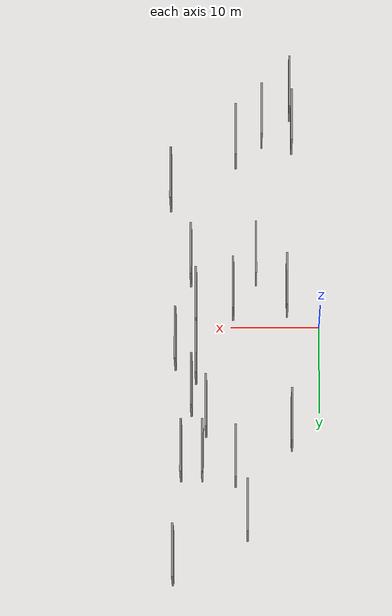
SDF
<sdf version="1.6">
 <world name="default">
  <scene>
   <sky><clouds><speed>12</speed></clouds></sky>
   <ambient>0.4 0.4 0.4 1</ambient>
   <background>0.7 0.7 0.7 1</background>
   <shadows>1</shadows>
  </scene>
  <gravity>0 0 -9.8066</gravity>
  <magnetic_field>6e-06 2.3e-05 -4.2e-05</magnetic_field>
  <physics default="0" name="default_physics" type="ode">
   <ode>
    <solver>
     <type>quick</type>
     <iters>10</iters>
     <sor>1.0</sor>
     <use_dynamic_moi_rescaling>0</use_dynamic_moi_rescaling>
    </solver>
    <constraints>
     <cfm>0</cfm>
     <erp>0.2</erp>
     <contact_max_correcting_vel>100</contact_max_correcting_vel>
     <contact_surface_layer>0.001</contact_surface_layer>
    </constraints>
   </ode>
   <max_step_size>0.004</max_step_size>
   <real_time_factor>1</real_time_factor>
   <real_time_update_rate>250</real_time_update_rate>
  </physics>
  <light name="sun" type="directional">
   <pose>0 0 10 0 0 0</pose>
   <diffuse>0.8 0.8 0.8 1</diffuse>
   <specular>0.2 0.2 0.2 1</specular>
   <attenuation>
    <range>1000</range>
    <constant>0.9</constant>
    <linear>0.01</linear>
    <quadratic>0.001</quadratic>
   </attenuation>
   <direction>-0.5 0.1 -0.9</direction>
  </light>
  <model name="grey_wall_1">
   <static>1</static>
   <pose>3.6434 -4.2358 0.0 0.000000 0.000000 1.570796</pose>
   <link name="link">
    <pose>0 0 3.00 0 0 0</pose>
    <collision name="collision"><geometry><box><size>6.00 0.2 6.00</size></box></geometry></collision>
    <visual name="visual">
     <cast_shadows>0</cast_shadows>
     <geometry><box><size>6.00 0.2 6.00</size></box></geometry>
     <material>
      <script>
       <uri>model://grey_wall/materials/scripts</uri>
       <uri>model://grey_wall/materials/textures</uri>
       <name>vrc/grey_wall</name>
      </script>
     </material>
    </visual>
   </link>
  </model>
  <model name="grey_wall_2">
   <static>1</static>
   <pose>3.1262 11.4131 0.0 0.000000 0.000000 1.570796</pose>
   <link name="link">
    <pose>0 0 3.00 0 0 0</pose>
    <collision name="collision"><geometry><box><size>6.00 0.2 6.00</size></box></geometry></collision>
    <visual name="visual">
     <cast_shadows>0</cast_shadows>
     <geometry><box><size>6.00 0.2 6.00</size></box></geometry>
     <material>
      <script>
       <uri>model://grey_wall/materials/scripts</uri>
       <uri>model://grey_wall/materials/textures</uri>
       <name>vrc/grey_wall</name>
      </script>
     </material>
    </visual>
   </link>
  </model>
  <model name="grey_wall_3">
   <static>1</static>
   <pose>13.9325 3.6311 0.0 0.000000 0.000000 1.570796</pose>
   <link name="link">
    <pose>0 0 3.00 0 0 0</pose>
    <collision name="collision"><geometry><box><size>6.00 0.2 6.00</size></box></geometry></collision>
    <visual name="visual">
     <cast_shadows>0</cast_shadows>
     <geometry><box><size>6.00 0.2 6.00</size></box></geometry>
     <material>
      <script>
       <uri>model://grey_wall/materials/scripts</uri>
       <uri>model://grey_wall/materials/textures</uri>
       <name>vrc/grey_wall</name>
      </script>
     </material>
    </visual>
   </link>
  </model>
  <model name="grey_wall_4">
   <static>1</static>
   <pose>3.3261 -27.5764 0.0 0.000000 0.000000 1.570796</pose>
   <link name="link">
    <pose>0 0 3.00 0 0 0</pose>
    <collision name="collision"><geometry><box><size>6.00 0.2 6.00</size></box></geometry></collision>
    <visual name="visual">
     <cast_shadows>0</cast_shadows>
     <geometry><box><size>6.00 0.2 6.00</size></box></geometry>
     <material>
      <script>
       <uri>model://grey_wall/materials/scripts</uri>
       <uri>model://grey_wall/materials/textures</uri>
       <name>vrc/grey_wall</name>
      </script>
     </material>
    </visual>
   </link>
  </model>
  <model name="grey_wall_5">
   <static>1</static>
   <pose>16.8456 -16.7078 0.0 0.000000 0.000000 1.570796</pose>
   <link name="link">
    <pose>0 0 3.00 0 0 0</pose>
    <collision name="collision"><geometry><box><size>6.00 0.2 6.00</size></box></geometry></collision>
    <visual name="visual">
     <cast_shadows>0</cast_shadows>
     <geometry><box><size>6.00 0.2 6.00</size></box></geometry>
     <material>
      <script>
       <uri>model://grey_wall/materials/scripts</uri>
       <uri>model://grey_wall/materials/textures</uri>
       <name>vrc/grey_wall</name>
      </script>
     </material>
    </visual>
   </link>
  </model>
  <model name="grey_wall_6">
   <static>1</static>
   <pose>14.5267 -7.7868 0.0 0.000000 0.000000 1.570796</pose>
   <link name="link">
    <pose>0 0 3.00 0 0 0</pose>
    <collision name="collision"><geometry><box><size>6.00 0.2 6.00</size></box></geometry></collision>
    <visual name="visual">
     <cast_shadows>0</cast_shadows>
     <geometry><box><size>6.00 0.2 6.00</size></box></geometry>
     <material>
      <script>
       <uri>model://grey_wall/materials/scripts</uri>
       <uri>model://grey_wall/materials/textures</uri>
       <name>vrc/grey_wall</name>
      </script>
     </material>
    </visual>
   </link>
  </model>
  <model name="grey_wall_7">
   <static>1</static>
   <pose>9.4575 -21.8375 0.0 0.000000 0.000000 1.570796</pose>
   <link name="link">
    <pose>0 0 3.00 0 0 0</pose>
    <collision name="collision"><geometry><box><size>6.00 0.2 6.00</size></box></geometry></collision>
    <visual name="visual">
     <cast_shadows>0</cast_shadows>
     <geometry><box><size>6.00 0.2 6.00</size></box></geometry>
     <material>
      <script>
       <uri>model://grey_wall/materials/scripts</uri>
       <uri>model://grey_wall/materials/textures</uri>
       <name>vrc/grey_wall</name>
      </script>
     </material>
    </visual>
   </link>
  </model>
  <model name="grey_wall_8">
   <static>1</static>
   <pose>13.9377 -2.6072 0.0 0.000000 0.000000 1.570796</pose>
   <link name="link">
    <pose>0 0 3.00 0 0 0</pose>
    <collision name="collision"><geometry><box><size>6.00 0.2 6.00</size></box></geometry></collision>
    <visual name="visual">
     <cast_shadows>0</cast_shadows>
     <geometry><box><size>6.00 0.2 6.00</size></box></geometry>
     <material>
      <script>
       <uri>model://grey_wall/materials/scripts</uri>
       <uri>model://grey_wall/materials/textures</uri>
       <name>vrc/grey_wall</name>
      </script>
     </material>
    </visual>
   </link>
  </model>
  <model name="grey_wall_9">
   <static>1</static>
   <pose>7.1594 -7.9296 0.0 0.000000 0.000000 1.570796</pose>
   <link name="link">
    <pose>0 0 3.00 0 0 0</pose>
    <collision name="collision"><geometry><box><size>6.00 0.2 6.00</size></box></geometry></collision>
    <visual name="visual">
     <cast_shadows>0</cast_shadows>
     <geometry><box><size>6.00 0.2 6.00</size></box></geometry>
     <material>
      <script>
       <uri>model://grey_wall/materials/scripts</uri>
       <uri>model://grey_wall/materials/textures</uri>
       <name>vrc/grey_wall</name>
      </script>
     </material>
    </visual>
   </link>
  </model>
  <model name="grey_wall_10">
   <static>1</static>
   <pose>9.7541 -3.8514 0.0 0.000000 0.000000 1.570796</pose>
   <link name="link">
    <pose>0 0 3.00 0 0 0</pose>
    <collision name="collision"><geometry><box><size>6.00 0.2 6.00</size></box></geometry></collision>
    <visual name="visual">
     <cast_shadows>0</cast_shadows>
     <geometry><box><size>6.00 0.2 6.00</size></box></geometry>
     <material>
      <script>
       <uri>model://grey_wall/materials/scripts</uri>
       <uri>model://grey_wall/materials/textures</uri>
       <name>vrc/grey_wall</name>
      </script>
     </material>
    </visual>
   </link>
  </model>
  <model name="grey_wall_11">
   <static>1</static>
   <pose>12.7835 9.8037 0.0 0.000000 0.000000 1.570796</pose>
   <link name="link">
    <pose>0 0 3.00 0 0 0</pose>
    <collision name="collision"><geometry><box><size>6.00 0.2 6.00</size></box></geometry></collision>
    <visual name="visual">
     <cast_shadows>0</cast_shadows>
     <geometry><box><size>6.00 0.2 6.00</size></box></geometry>
     <material>
      <script>
       <uri>model://grey_wall/materials/scripts</uri>
       <uri>model://grey_wall/materials/textures</uri>
       <name>vrc/grey_wall</name>
      </script>
     </material>
    </visual>
   </link>
  </model>
  <model name="grey_wall_12">
   <static>1</static>
   <pose>3.0962 -23.5766 0.0 0.000000 0.000000 1.570796</pose>
   <link name="link">
    <pose>0 0 3.00 0 0 0</pose>
    <collision name="collision"><geometry><box><size>6.00 0.2 6.00</size></box></geometry></collision>
    <visual name="visual">
     <cast_shadows>0</cast_shadows>
     <geometry><box><size>6.00 0.2 6.00</size></box></geometry>
     <material>
      <script>
       <uri>model://grey_wall/materials/scripts</uri>
       <uri>model://grey_wall/materials/textures</uri>
       <name>vrc/grey_wall</name>
      </script>
     </material>
    </visual>
   </link>
  </model>
  <model name="grey_wall_13">
   <static>1</static>
   <pose>9.4488 15.5420 0.0 0.000000 0.000000 1.570796</pose>
   <link name="link">
    <pose>0 0 3.00 0 0 0</pose>
    <collision name="collision"><geometry><box><size>6.00 0.2 6.00</size></box></geometry></collision>
    <visual name="visual">
     <cast_shadows>0</cast_shadows>
     <geometry><box><size>6.00 0.2 6.00</size></box></geometry>
     <material>
      <script>
       <uri>model://grey_wall/materials/scripts</uri>
       <uri>model://grey_wall/materials/textures</uri>
       <name>vrc/grey_wall</name>
      </script>
     </material>
    </visual>
   </link>
  </model>
  <model name="grey_wall_14">
   <static>1</static>
   <pose>14.4347 7.3577 0.0 0.000000 0.000000 1.570796</pose>
   <link name="link">
    <pose>0 0 3.00 0 0 0</pose>
    <collision name="collision"><geometry><box><size>6.00 0.2 6.00</size></box></geometry></collision>
    <visual name="visual">
     <cast_shadows>0</cast_shadows>
     <geometry><box><size>6.00 0.2 6.00</size></box></geometry>
     <material>
      <script>
       <uri>model://grey_wall/materials/scripts</uri>
       <uri>model://grey_wall/materials/textures</uri>
       <name>vrc/grey_wall</name>
      </script>
     </material>
    </visual>
   </link>
  </model>
  <model name="grey_wall_15">
   <static>1</static>
   <pose>8.1083 21.6999 0.0 0.000000 0.000000 1.570796</pose>
   <link name="link">
    <pose>0 0 3.00 0 0 0</pose>
    <collision name="collision"><geometry><box><size>6.00 0.2 6.00</size></box></geometry></collision>
    <visual name="visual">
     <cast_shadows>0</cast_shadows>
     <geometry><box><size>6.00 0.2 6.00</size></box></geometry>
     <material>
      <script>
       <uri>model://grey_wall/materials/scripts</uri>
       <uri>model://grey_wall/materials/textures</uri>
       <name>vrc/grey_wall</name>
      </script>
     </material>
    </visual>
   </link>
  </model>
  <model name="grey_wall_16">
   <static>1</static>
   <pose>6.5130 -24.2973 0.0 0.000000 0.000000 1.570796</pose>
   <link name="link">
    <pose>0 0 3.00 0 0 0</pose>
    <collision name="collision"><geometry><box><size>6.00 0.2 6.00</size></box></geometry></collision>
    <visual name="visual">
     <cast_shadows>0</cast_shadows>
     <geometry><box><size>6.00 0.2 6.00</size></box></geometry>
     <material>
      <script>
       <uri>model://grey_wall/materials/scripts</uri>
       <uri>model://grey_wall/materials/textures</uri>
       <name>vrc/grey_wall</name>
      </script>
     </material>
    </visual>
   </link>
  </model>
  <model name="grey_wall_17">
   <static>1</static>
   <pose>13.1801 14.9407 0.0 0.000000 0.000000 1.570796</pose>
   <link name="link">
    <pose>0 0 3.00 0 0 0</pose>
    <collision name="collision"><geometry><box><size>6.00 0.2 6.00</size></box></geometry></collision>
    <visual name="visual">
     <cast_shadows>0</cast_shadows>
     <geometry><box><size>6.00 0.2 6.00</size></box></geometry>
     <material>
      <script>
       <uri>model://grey_wall/materials/scripts</uri>
       <uri>model://grey_wall/materials/textures</uri>
       <name>vrc/grey_wall</name>
      </script>
     </material>
    </visual>
   </link>
  </model>
  <model name="grey_wall_18">
   <static>1</static>
   <pose>15.5766 14.9422 0.0 0.000000 0.000000 1.570796</pose>
   <link name="link">
    <pose>0 0 3.00 0 0 0</pose>
    <collision name="collision"><geometry><box><size>6.00 0.2 6.00</size></box></geometry></collision>
    <visual name="visual">
     <cast_shadows>0</cast_shadows>
     <geometry><box><size>6.00 0.2 6.00</size></box></geometry>
     <material>
      <script>
       <uri>model://grey_wall/materials/scripts</uri>
       <uri>model://grey_wall/materials/textures</uri>
       <name>vrc/grey_wall</name>
      </script>
     </material>
    </visual>
   </link>
  </model>
  <model name="grey_wall_19">
   <static>1</static>
   <pose>16.2564 2.0011 0.0 0.000000 0.000000 1.570796</pose>
   <link name="link">
    <pose>0 0 3.00 0 0 0</pose>
    <collision name="collision"><geometry><box><size>6.00 0.2 6.00</size></box></geometry></collision>
    <visual name="visual">
     <cast_shadows>0</cast_shadows>
     <geometry><box><size>6.00 0.2 6.00</size></box></geometry>
     <material>
      <script>
       <uri>model://grey_wall/materials/scripts</uri>
       <uri>model://grey_wall/materials/textures</uri>
       <name>vrc/grey_wall</name>
      </script>
     </material>
    </visual>
   </link>
  </model>
  <model name="grey_wall_20">
   <static>1</static>
   <pose>16.4369 26.7785 0.0 0.000000 0.000000 1.570796</pose>
   <link name="link">
    <pose>0 0 3.00 0 0 0</pose>
    <collision name="collision"><geometry><box><size>6.00 0.2 6.00</size></box></geometry></collision>
    <visual name="visual">
     <cast_shadows>0</cast_shadows>
     <geometry><box><size>6.00 0.2 6.00</size></box></geometry>
     <material>
      <script>
       <uri>model://grey_wall/materials/scripts</uri>
       <uri>model://grey_wall/materials/textures</uri>
       <name>vrc/grey_wall</name>
      </script>
     </material>
    </visual>
   </link>
  </model>
 </world>
</sdf>
